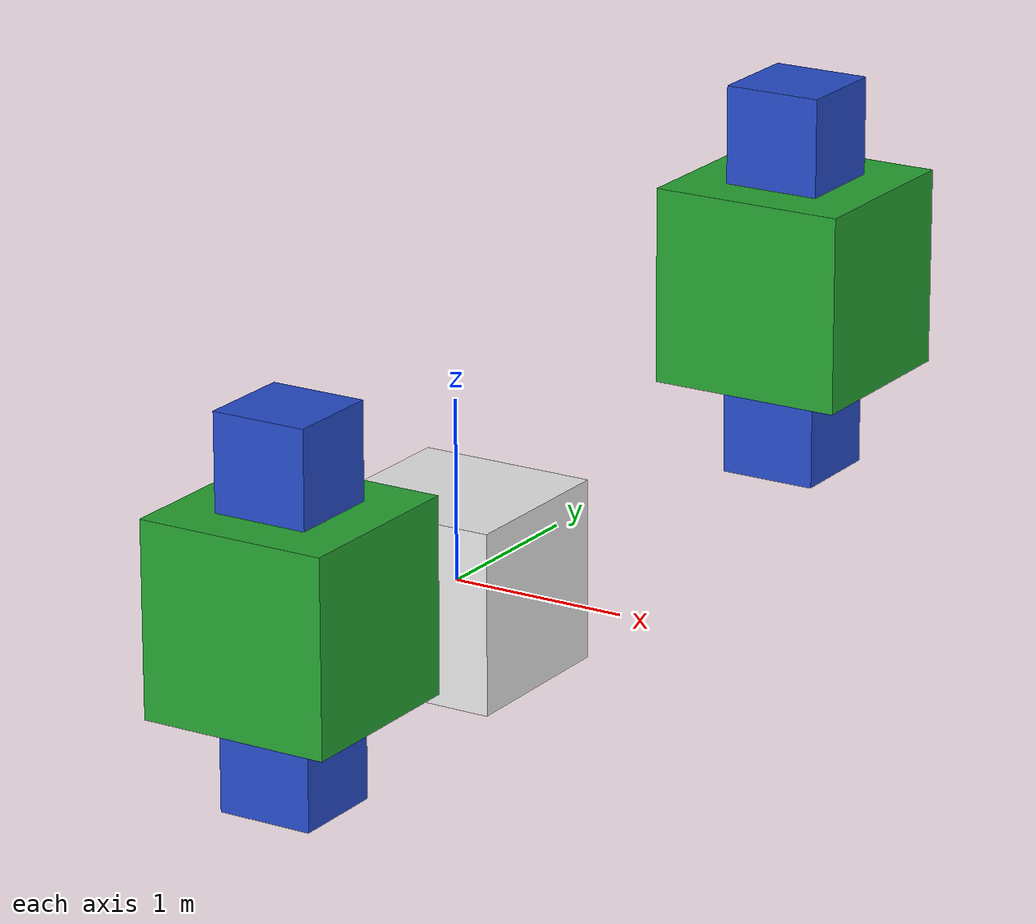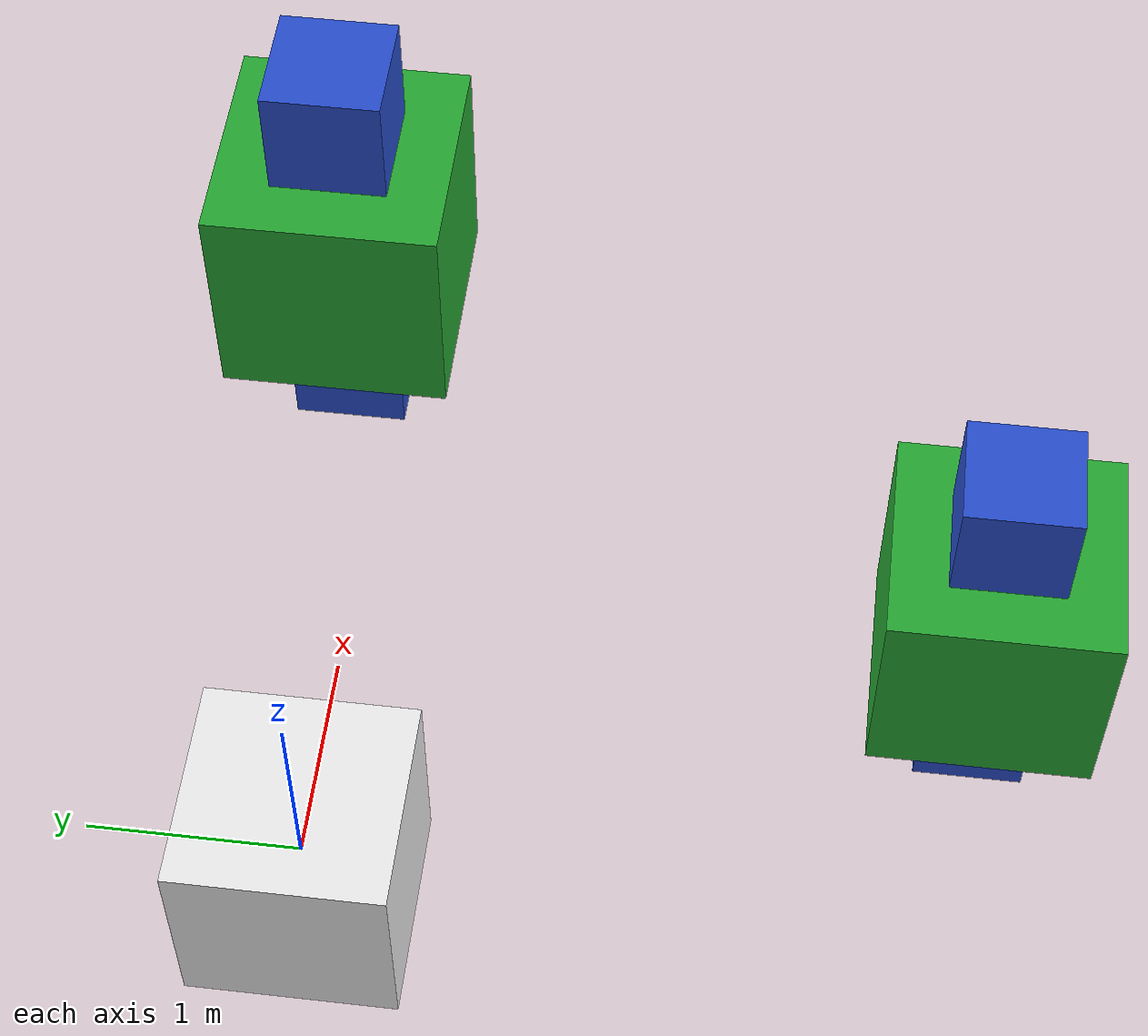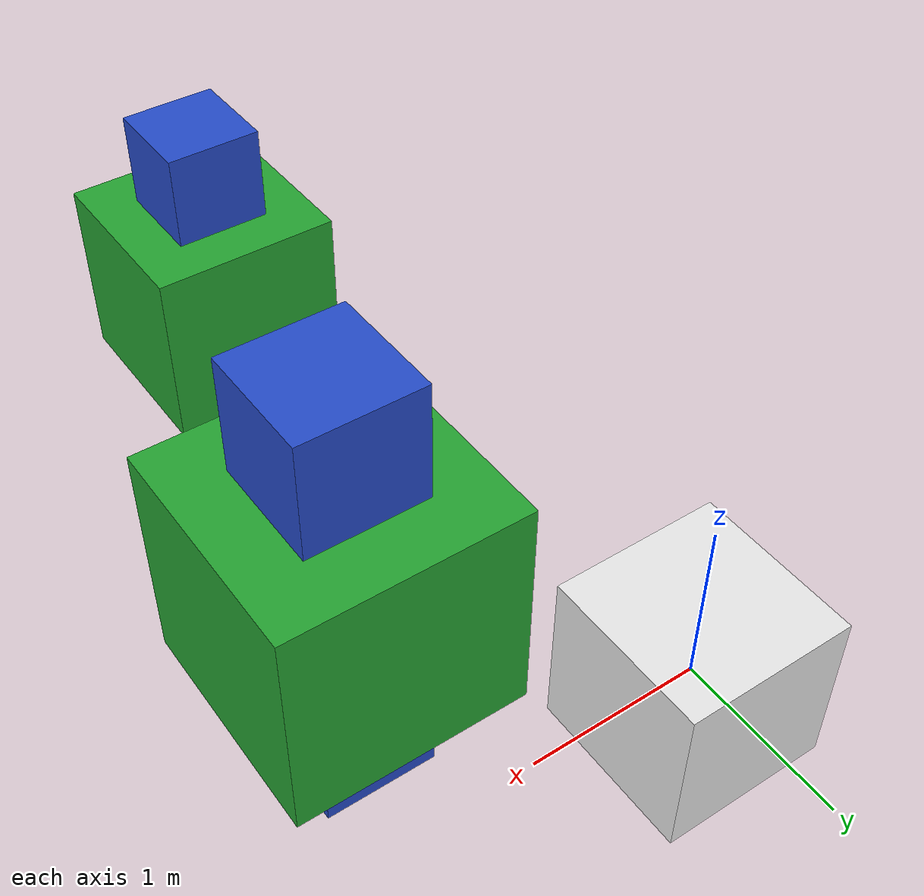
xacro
<?xml version="1.0"?>
<!-- Synthesis of an Ant Leg -->
<robot name="antmodel" xmlns:xacro="http://www.ros.org/wiki/xacro">

  <!-- Constants for robot dimensions -->
  <xacro:property name="PI" value="3.1415926535897931"/>
  <xacro:property name="mass" value="1" /> <!-- arbitrary value for mass -->
  <xacro:property name="width" value="0.1" /> <!-- Square dimensions (widthxwidth) of beams -->
  <xacro:property name="height1" value="5" /> <!-- Link 1 -->
  <xacro:property name="height2" value="0.1" /> <!-- Link 2 -->
  <xacro:property name="height3" value="0.1" /> <!-- Link 3 -->

  <!-- Base transformation parameters -->
  <xacro:property name="AZ" value="4.0127" /> <!-- -1*min(PZ(:,5)) -->
  <xacro:property name="baseX" value="2.5329" /> <!-- link{1,2}(10,1) -->
  <xacro:property name="baseY" value="0.7012" /> <!-- link{1,2}(10,2) -->
  <xacro:property name="baseZ" value="-0.1418" /> <!-- link{1,2}(10,3) -->
  <xacro:property name="baseL" value="2.632" /> <!-- norm(link{1,2}(10,:)) -->
  <xacro:property name="AR" value="-0.9202" /> <!-- tr2rpy(A{50})(1) -->
  <xacro:property name="AP" value="0.1936" /> <!-- tr2rpy(A{50})(2) -->
  <xacro:property name="AY" value="0.1716" /> <!-- tr2rpy(A{50})(3) -->

  <!-- Antleg Parameter -->
  <xacro:property name="femur_len" value="1.70"/> <!-- length of femur segment -->
  <xacro:property name="femur_rad" value="0.05"/> <!-- radius of femur segment -->
  <xacro:property name="tibia_len" value="2.60"/> <!-- length of tibia + tarsus segment -->
  <xacro:property name="tibia_rad" value="0.02"/>

  <!-- Import all Gazebo-customization elements, including Gazebo colors -->
  <xacro:include filename="$(find antmodel_description)/urdf/antmodel.gazebo" />
  <!-- Import Rviz colors -->
  <xacro:include filename="$(find antmodel_description)/urdf/materials.xacro" />

  <xacro:property name="connection_offset" value="4" />
  <xacro:property name="connection_offset1" value="2" />

<link name="body">
    <visual>
      <origin xyz="0 0 0" rpy="0 0 0"/>
      <geometry>
	<box size="1 1 1"/>
      </geometry>
    </visual>

    <collision>
      <origin xyz="0 0 0" rpy="0 0 0"/>
      <geometry>
	<box size="1 1 1"/>
      </geometry>
    </collision>

    <inertial>
      <origin xyz="0 0 0" rpy="0 0 0"/>
      <mass value="${mass}"/>
      <inertia
	  ixx="0.0" ixy="0.0" ixz="0.0"
	  iyy="0.0" iyz="0.0"
	  izz="0.0"/>
    </inertial>
  </link>

      <gazebo reference="body">
    <material>Gazebo/White</material>
  </gazebo>

<xacro:macro name="leg" params="suffix xyz offset">
<link name="c1_${suffix}">
    <visual>
      <origin xyz="0 ${offset} 0" rpy="0 0 0"/>
      <geometry>
	<box size="0.5 0.5 2"/>
      </geometry>
    </visual>

    <collision>
      <origin xyz="0 ${offset} 0" rpy="0 0 0"/>
      <geometry>
	<box size="0.5 0.5 2"/>
      </geometry>
    </collision>

    <inertial>
      <origin xyz="0 0 0" rpy="0 0 0"/>
      <mass value="${mass}"/>
      <inertia
	  ixx="0.0" ixy="0.0" ixz="0.0"
	  iyy="0.0" iyz="0.0"
	  izz="0.0"/>
    </inertial>
  </link>

  <link name="leg_${suffix}">
    <visual>
      <origin xyz="0 -${offset} 0" rpy="0 0 0"/>
      <geometry>
	<box size="1 1 1"/>
      </geometry>
    </visual>

    <collision>
      <origin xyz="0 -${offset} 0" rpy="0 0 0"/>
      <geometry>
	<box size="1 1 1"/>
      </geometry>
    </collision>

    <inertial>
      <origin xyz="0 -${offset} 0" rpy="0 0 0"/>
      <mass value="${mass}"/>
      <inertia
	  ixx="0.0" ixy="0.0" ixz="0.0"
	  iyy="0.0" iyz="0.0"
	  izz="0.0"/>
    </inertial>
  </link>

<joint name="j_body_${suffix}" type="revolute">
        <parent link="body"/>
        <child link="c1_${suffix}"/>
	<origin xyz="${xyz}" rpy=" 0 3.14159 3.14159" />
    <axis xyz="1 0 0" />
    <limit effort="2.8" velocity="5.6548668" lower="-2.6179939" upper="2.6179939" />
</joint>

<joint name="j_antmodel_attachment_${suffix}" type="revolute">
        <parent link="c1_${suffix}"/>
        <child link="leg_${suffix}"/>
	    <origin xyz="0 0 0" rpy=" 0 3.14159 3.14159" />
    <axis xyz="1 0 0" />
    <limit effort="2.8" velocity="5.6548668" lower="-2.6179939" upper="2.6179939" />
</joint>

  <gazebo reference="c1_${suffix}">
    <material>Gazebo/Blue</material>
  </gazebo>
   <gazebo reference="leg_${suffix}">
    <material>Gazebo/Green</material>
  </gazebo>

</xacro:macro>

<xacro:leg suffix="1" xyz="2 2 2" offset="2"/>
<xacro:leg suffix="2" xyz="1 1 1" offset="4"/>

</robot>
